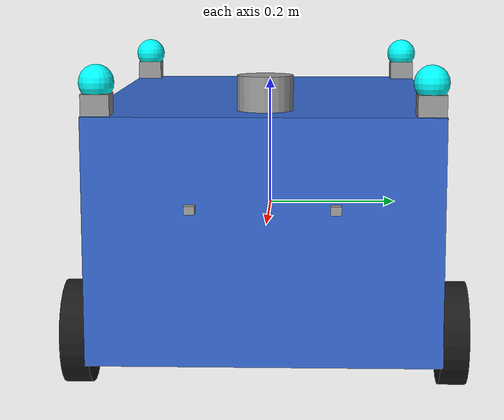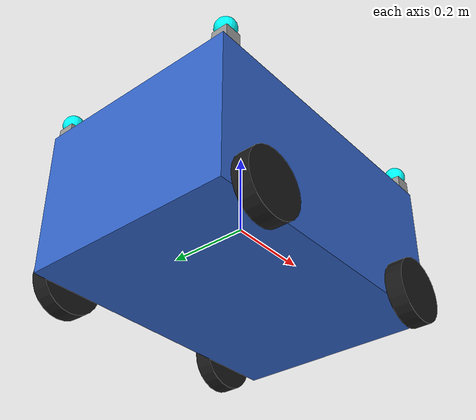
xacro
<?xml version="1.0"?>
<robot name="smart_cart" xmlns:xacro="http://www.ros.org/wiki/xacro">

  <!-- PROPERTIES - from CW1 Hardware Spec              -->
  <xacro:property name="cart_length"  value="0.70"/>
  <xacro:property name="cart_width"   value="0.50"/>
  <xacro:property name="cart_height"  value="0.35"/>
  <xacro:property name="cart_mass"    value="15.0"/>
  <xacro:property name="wheel_radius" value="0.075"/>
  <xacro:property name="wheel_width"  value="0.04"/>
  <xacro:property name="wheel_mass"   value="0.5"/>

  <!-- MATERIALS                                        -->
  <material name="blue_cart">
    <color rgba="0.2 0.4 0.8 1.0"/>
  </material>
  <material name="black_wheel">
    <color rgba="0.1 0.1 0.1 1.0"/>
  </material>
  <material name="grey_sensor">
    <color rgba="0.6 0.6 0.6 1.0"/>
  </material>
  <material name="cyan_uwb">
    <color rgba="0.0 1.0 1.0 1.0"/>
  </material>

  <!-- BASE LINK                                        -->
  <link name="base_link">
    <visual>
      <origin xyz="0 0 0" rpy="0 0 0.0"/>
      <geometry>
        <box size="${cart_length} ${cart_width} ${cart_height}"/>
      </geometry>
      <material name="blue_cart"/>
    </visual>
    <collision>
      <geometry>
        <box size="${cart_length} ${cart_width} ${cart_height}"/>
      </geometry>
    </collision>
    <inertial>
      <mass value="${cart_mass}"/>
      <inertia
        ixx="${(1/12)*cart_mass*(cart_width*cart_width   + cart_height*cart_height)}"
        iyy="${(1/12)*cart_mass*(cart_length*cart_length + cart_height*cart_height)}"
        izz="${(1/12)*cart_mass*(cart_length*cart_length + cart_width*cart_width)}"
        ixy="0" ixz="0" iyz="0"/>
    </inertial>
  </link>

  <!-- base_footprint for Nav2 compatibility -->

  <!-- OMNI WHEEL MACRO                                 -->
  <xacro:macro name="omni_wheel" params="name x y z">
    <link name="${name}_wheel">
      <visual>
        <geometry>
          <cylinder radius="${wheel_radius}" length="${wheel_width}"/>
        </geometry>
        <material name="black_wheel"/>
      </visual>
      <collision>
        <geometry>
          <cylinder radius="${wheel_radius}" length="${wheel_width}"/>
        </geometry>
      </collision>
      <inertial>
        <mass value="${wheel_mass}"/>
        <inertia
          ixx="${(1/12)*wheel_mass*(3*wheel_radius*wheel_radius + wheel_width*wheel_width)}"
          iyy="${(1/12)*wheel_mass*(3*wheel_radius*wheel_radius + wheel_width*wheel_width)}"
          izz="${(1/2)*wheel_mass*wheel_radius*wheel_radius}"
          ixy="0" ixz="0" iyz="0"/>
      </inertial>
    </link>
    <joint name="${name}_wheel_joint" type="continuous">
      <parent link="base_link"/>
      <child  link="${name}_wheel"/>
      <origin xyz="${x} ${y} ${z}" rpy="1.5708 0 0"/>
      <axis xyz="0 0 -1"/>
      <dynamics damping="0.01" friction="0.01"/>
    </joint>
    <gazebo reference="${name}_wheel">
      <mu1>0.5</mu1>
      <mu2>0.05</mu2>
      <kp>1e6</kp>
      <kd>1.0</kd>
      <material>Gazebo/Black</material>
    </gazebo>
  </xacro:macro>

  <!-- 4 wheels -->
  <xacro:omni_wheel name="front_left"  x=" 0.25" y=" 0.27" z="-0.15"/>
  <xacro:omni_wheel name="front_right" x=" 0.25" y="-0.27" z="-0.15"/>
  <xacro:omni_wheel name="rear_left"   x="-0.25" y=" 0.27" z="-0.15"/>
  <xacro:omni_wheel name="rear_right"  x="-0.25" y="-0.27" z="-0.15"/>

  <!-- UWB ANCHOR MACRO                                 -->
  <!-- 4 anchors at cart corners - visual only          -->
  <!-- Real UWB trilateration handled by                -->
  <!-- uwb_simulator_node.py using odometry data        -->
  <xacro:macro name="uwb_anchor" params="name x y">

    <link name="${name}_uwb_anchor">

      <!-- Anchor housing - small grey box -->
      <visual>
        <geometry>
          <box size="0.04 0.04 0.03"/>
        </geometry>
        <material name="grey_sensor"/>
      </visual>

      <!-- Cyan glow sphere - indicates active UWB signal -->
      <visual>
        <origin xyz="0 0 0.03" rpy="0 0 0"/>
        <geometry>
          <sphere radius="0.025"/>
        </geometry>
        <material name="cyan_uwb"/>
      </visual>

      <inertial>
        <mass value="0.05"/>
        <inertia ixx="0.00001" iyy="0.00001" izz="0.00001"
                 ixy="0" ixz="0" iyz="0"/>
      </inertial>

    </link>

    <joint name="${name}_uwb_joint" type="fixed">
      <parent link="base_link"/>
      <child  link="${name}_uwb_anchor"/>
      <!-- Mounted at top corners of cart body -->
      <origin xyz="${x} ${y} 0.19" rpy="0 0 0"/>
    </joint>

    <!-- Gazebo: make the glow emissive so it's visible -->
    <gazebo reference="${name}_uwb_anchor">
      <material>Gazebo/Cyan</material>
    </gazebo>

  </xacro:macro>

  <!-- 4 UWB anchors at cart corners -->
  <!-- FL = front-left, FR = front-right, RL = rear-left, RR = rear-right -->
  <xacro:uwb_anchor name="uwb_fl" x=" 0.32" y=" 0.23"/>
  <xacro:uwb_anchor name="uwb_fr" x=" 0.32" y="-0.23"/>
  <xacro:uwb_anchor name="uwb_rl" x="-0.32" y=" 0.23"/>
  <xacro:uwb_anchor name="uwb_rr" x="-0.32" y="-0.23"/>

  <!-- 2D LIDAR - RPLIDAR A1                           -->
  <link name="lidar_link">
    <visual>
      <geometry><cylinder radius="0.04" length="0.05"/></geometry>
      <material name="grey_sensor"/>
    </visual>
    <collision>
      <geometry><cylinder radius="0.04" length="0.05"/></geometry>
    </collision>
    <inertial>
      <mass value="0.17"/>
      <inertia ixx="0.0001" iyy="0.0001" izz="0.0001"
               ixy="0" ixz="0" iyz="0"/>
    </inertial>
  </link>

  <joint name="lidar_joint" type="fixed">
    <parent link="base_link"/>
    <child  link="lidar_link"/>
    <origin xyz="0.25 0 0.20" rpy="0 0 0"/>
  </joint>

  <gazebo reference="lidar_link">
    <sensor name="lidar" type="gpu_lidar">
      <gz_frame_id>lidar_link</gz_frame_id>
      <topic>scan</topic>
      <update_rate>10</update_rate>
      <always_on>true</always_on>
      <visualize>true</visualize>
      <lidar>
        <scan>
          <horizontal>
            <samples>360</samples>
            <resolution>1</resolution>
            <min_angle>-3.14159265</min_angle>
            <max_angle>3.14159265</max_angle>
          </horizontal>
        </scan>
        <range>
          <min>0.12</min>
          <max>12.0</max>
          <resolution>0.01</resolution>
        </range>
        <noise>
          <type>gaussian</type>
          <mean>0.0</mean>
          <stddev>0.01</stddev>
        </noise>
      </lidar>
    </sensor>
  </gazebo>

  <!-- ULTRASONIC SENSORS - HC-SR04 (2x front)         -->
  <xacro:macro name="ultrasonic" params="name y_offset">
    <link name="${name}_us_link">
      <visual>
        <geometry><box size="0.015 0.015 0.012"/></geometry>
        <material name="grey_sensor"/>
      </visual>
      <inertial>
        <mass value="0.009"/>
        <inertia ixx="0.00001" iyy="0.00001" izz="0.00001"
                 ixy="0" ixz="0" iyz="0"/>
      </inertial>
    </link>
    <joint name="${name}_us_joint" type="fixed">
      <parent link="base_link"/>
      <child  link="${name}_us_link"/>
      <origin xyz="0.36 ${y_offset} 0.05" rpy="0 0 0"/>
    </joint>
    <gazebo reference="${name}_us_link">
      <sensor name="${name}_ultrasonic" type="gpu_lidar">
        <gz_frame_id>${name}_us_link</gz_frame_id>
        <topic>ultrasonic/${name}</topic>
        <update_rate>10</update_rate>
        <always_on>true</always_on>
        <lidar>
          <scan>
            <horizontal>
              <samples>5</samples>
              <resolution>1</resolution>
              <min_angle>-0.13</min_angle>
              <max_angle>0.13</max_angle>
            </horizontal>
          </scan>
          <range>
            <min>0.02</min>
            <max>4.0</max>
            <resolution>0.01</resolution>
          </range>
        </lidar>
      </sensor>
    </gazebo>
  </xacro:macro>

  <xacro:ultrasonic name="left"  y_offset=" 0.10"/>
  <xacro:ultrasonic name="right" y_offset="-0.10"/>

  <!-- DIFFERENTIAL DRIVE PLUGIN - Gazebo Harmonic     -->
  <gazebo>
    <plugin filename="gz-sim-diff-drive-system"
            name="gz::sim::systems::DiffDrive">
      <left_joint>front_left_wheel_joint</left_joint>
      <right_joint>front_right_wheel_joint</right_joint>
      <wheel_separation>0.54</wheel_separation>
      <wheel_radius>0.075</wheel_radius>
      <max_linear_acceleration>1.0</max_linear_acceleration>
      <min_linear_acceleration>-1.0</min_linear_acceleration>
      <max_angular_acceleration>2.0</max_angular_acceleration>
      <max_linear_velocity>1.2</max_linear_velocity>
      <odom_publish_frequency>20</odom_publish_frequency>
      <topic>cmd_vel</topic>
      <odom_topic>odom</odom_topic>
      <tf_topic>/tf</tf_topic>
      <frame_id>odom</frame_id>
      <child_frame_id>base_link</child_frame_id>
    </plugin>
  </gazebo>

  <!-- Joint state publisher plugin -->
  <gazebo>
    <plugin filename="gz-sim-joint-state-publisher-system"
            name="gz::sim::systems::JointStatePublisher">
      <topic>joint_states</topic>
    </plugin>
  </gazebo>

</robot>
